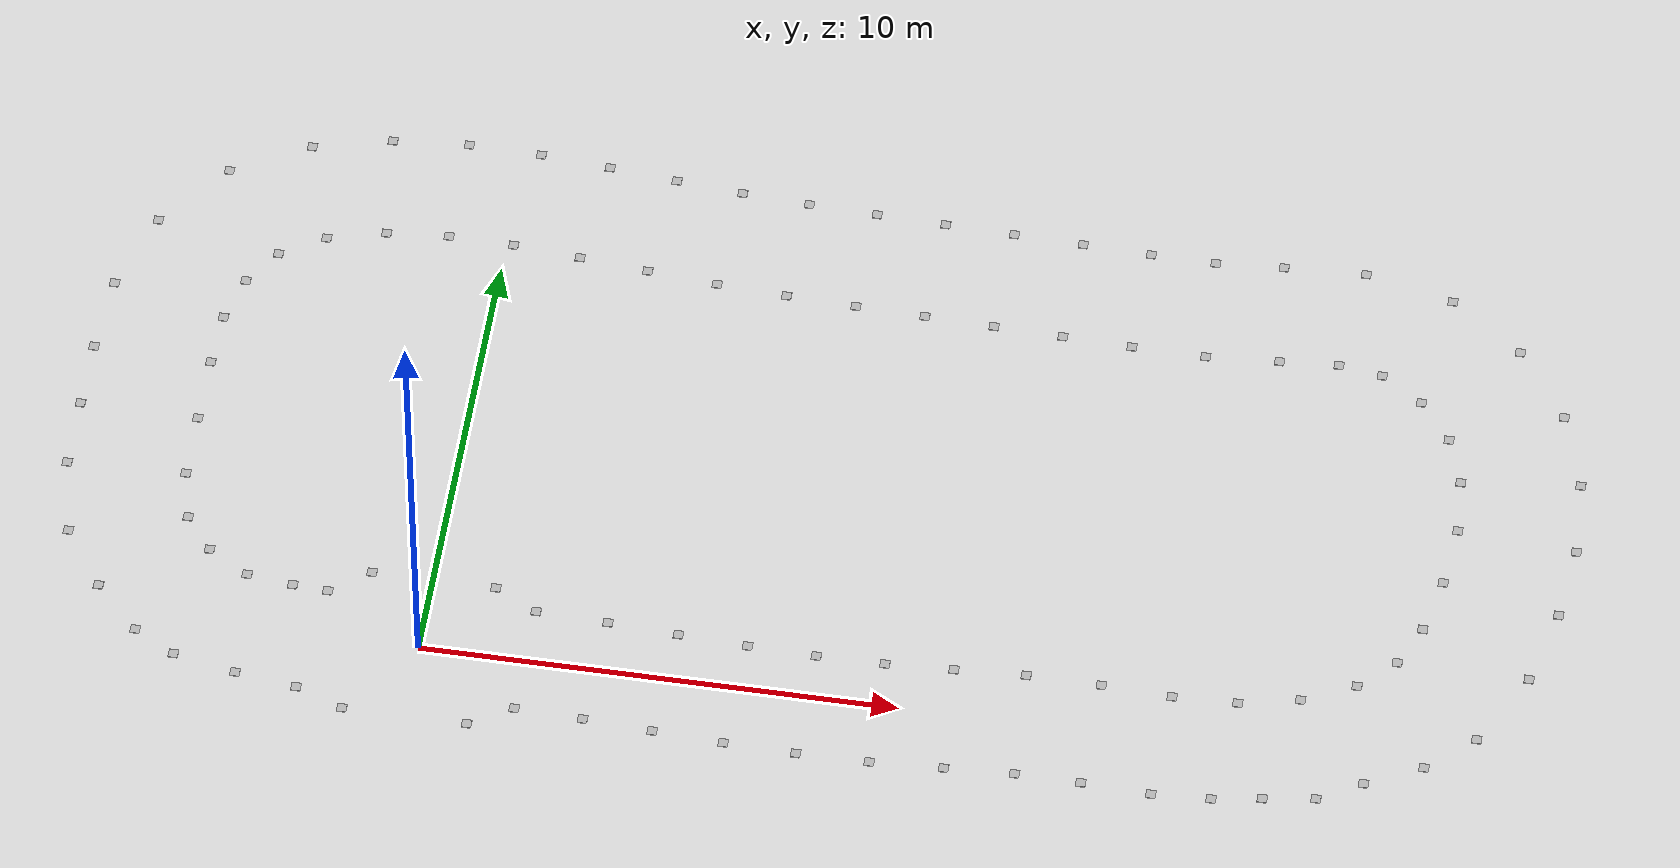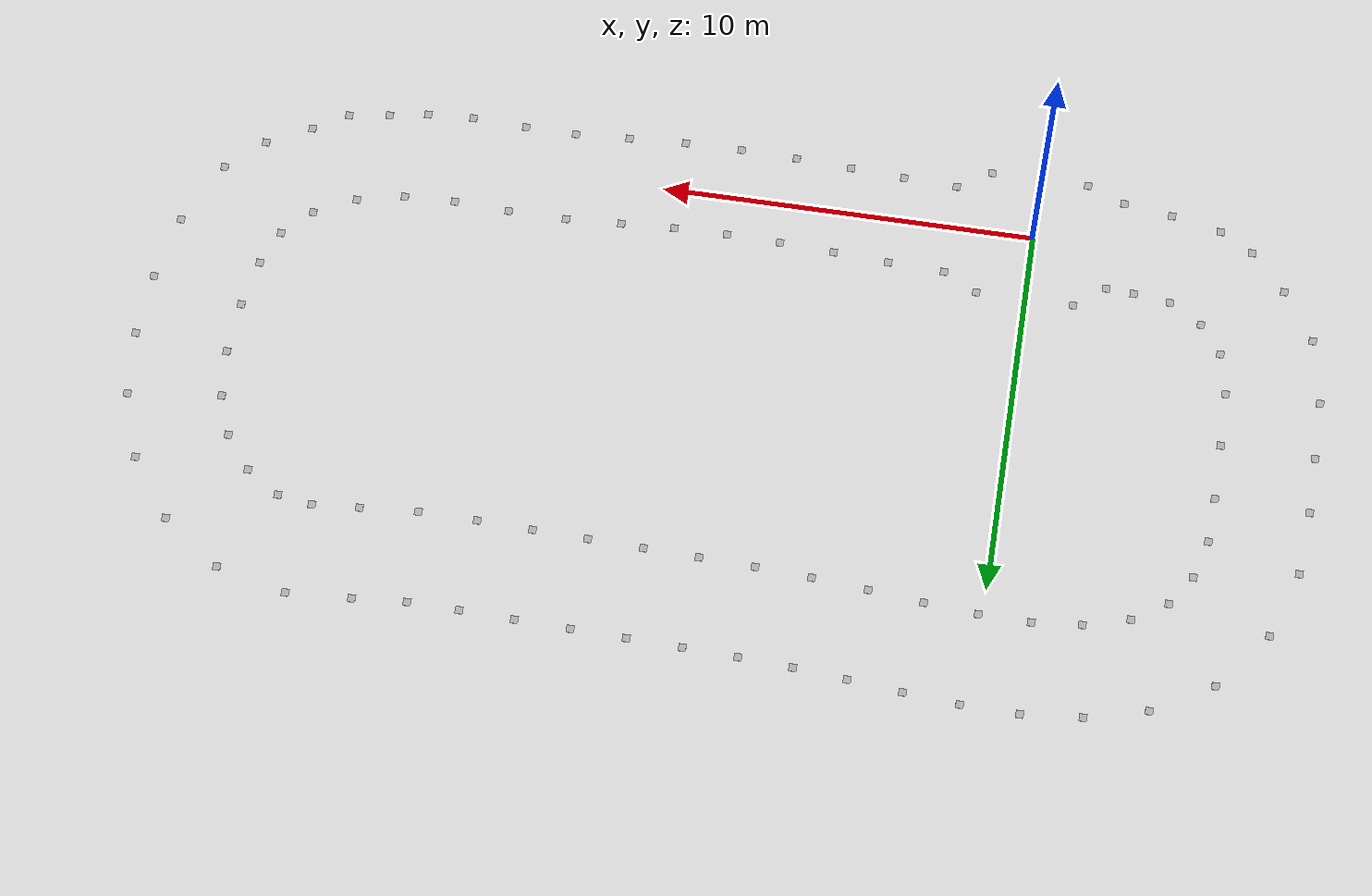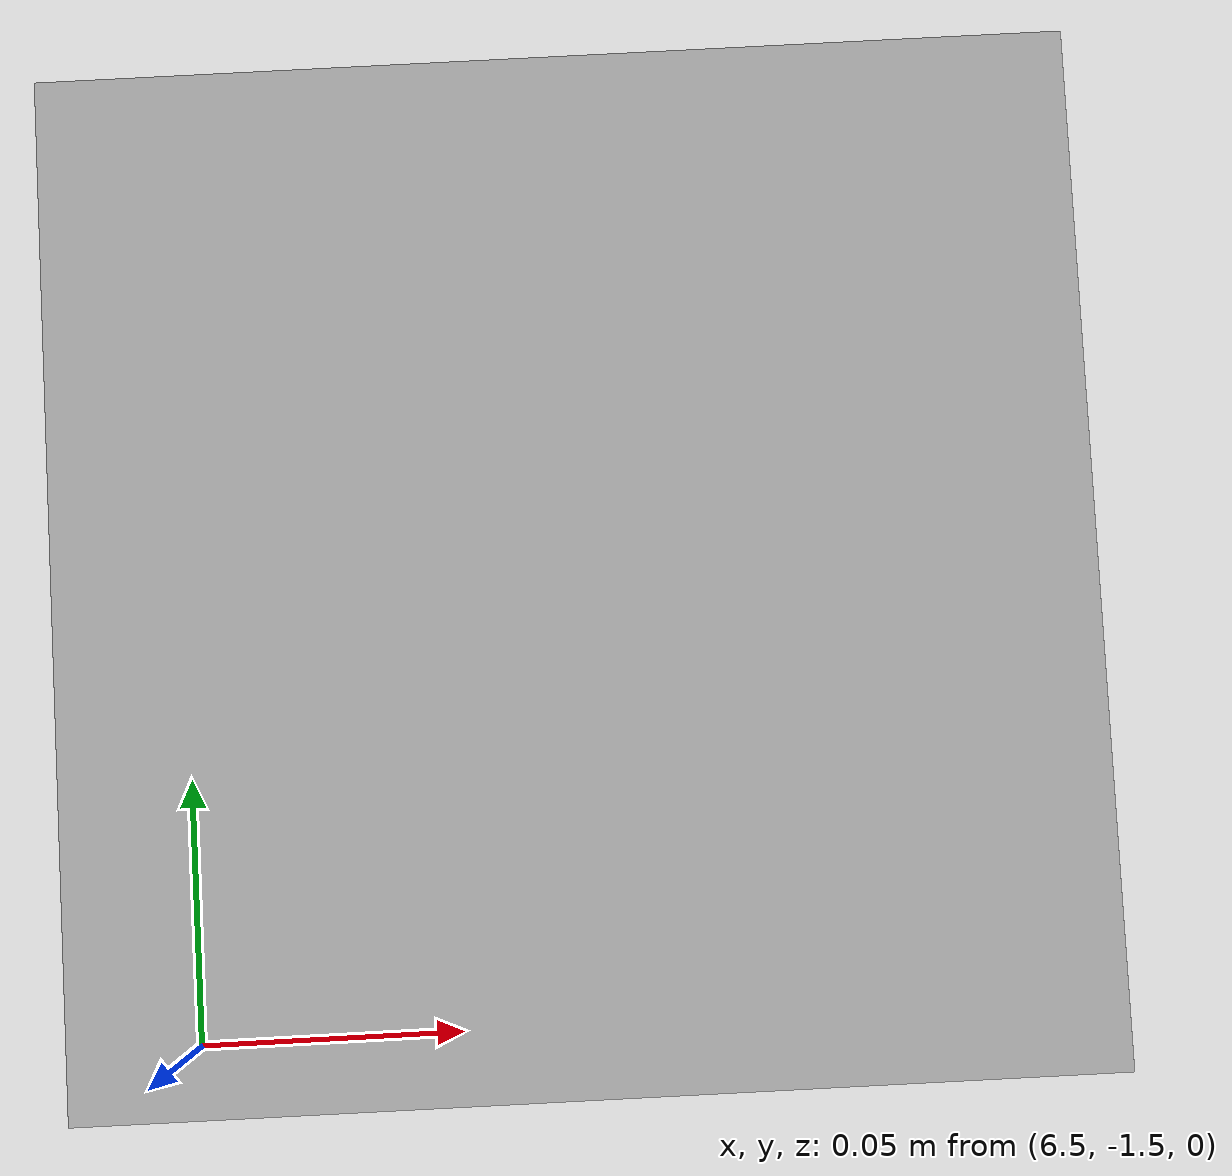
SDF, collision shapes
<?xml version='1.0' encoding='UTF-8'?>
<sdf version="1.4">
  <model name="some track">
    <include>
      <uri>model://cone_yellow</uri>
      <pose>2.1986505809997072 -1.215353877288275 0 0 0 0</pose>
      <name>cone_right</name>
    </include>
    <include>
      <uri>model://cone_yellow</uri>
      <pose>3.6305950468824033 -1.267574848423376 0 0 0 0</pose>
      <name>cone_right</name>
    </include>
    <include>
      <uri>model://cone_yellow</uri>
      <pose>5.089175369233953 -1.3439329501333463 0 0 0 0</pose>
      <name>cone_right</name>
    </include>
    <include>
      <uri>model://cone_yellow</uri>
      <pose>6.575269563747831 -1.4132624315316897 0 0 0 0</pose>
      <name>cone_right</name>
    </include>
    <include>
      <uri>model://cone_yellow</uri>
      <pose>8.08313833049434 -1.4472067524502321 0 0 0 0</pose>
      <name>cone_right</name>
    </include>
    <include>
      <uri>model://cone_yellow</uri>
      <pose>9.60432135808471 -1.428205179995867 0 0 0 0</pose>
      <name>cone_right</name>
    </include>
    <include>
      <uri>model://cone_yellow</uri>
      <pose>11.129960583117047 -1.3458912716398117 0 0 0 0</pose>
      <name>cone_right</name>
    </include>
    <include>
      <uri>model://cone_yellow</uri>
      <pose>12.583459732650418 -1.2632786151428472 0 0 0 0</pose>
      <name>cone_right</name>
    </include>
    <include>
      <uri>model://cone_yellow</uri>
      <pose>13.952161715503015 -1.2754882922120903 0 0 0 0</pose>
      <name>cone_right</name>
    </include>
    <include>
      <uri>model://cone_yellow</uri>
      <pose>15.406956849520517 -1.3371010412167934 0 0 0 0</pose>
      <name>cone_right</name>
    </include>
    <include>
      <uri>model://cone_yellow</uri>
      <pose>18.753958240577315 -0.9328146333485399 0 0 0 0</pose>
      <name>cone_right</name>
    </include>
    <include>
      <uri>model://cone_yellow</uri>
      <pose>21.81363473421703 1.052130595346501 0 0 0 0</pose>
      <name>cone_right</name>
    </include>
    <include>
      <uri>model://cone_yellow</uri>
      <pose>22.694633996466152 2.729890063304585 0 0 0 0</pose>
      <name>cone_right</name>
    </include>
    <include>
      <uri>model://cone_yellow</uri>
      <pose>23.10292639492274 4.44898180318318 0 0 0 0</pose>
      <name>cone_right</name>
    </include>
    <include>
      <uri>model://cone_yellow</uri>
      <pose>23.274554723864163 6.119650013108543 0 0 0 0</pose>
      <name>cone_right</name>
    </include>
    <include>
      <uri>model://cone_yellow</uri>
      <pose>23.168133843542535 7.842229736720678 0 0 0 0</pose>
      <name>cone_right</name>
    </include>
    <include>
      <uri>model://cone_yellow</uri>
      <pose>22.61739989388106 9.568487493817257 0 0 0 0</pose>
      <name>cone_right</name>
    </include>
    <include>
      <uri>model://cone_yellow</uri>
      <pose>21.50741723736139 11.127737665392873 0 0 0 0</pose>
      <name>cone_right</name>
    </include>
    <include>
      <uri>model://cone_yellow</uri>
      <pose>19.941681775831128 12.247868753026477 0 0 0 0</pose>
      <name>cone_right</name>
    </include>
    <include>
      <uri>model://cone_yellow</uri>
      <pose>18.046574675836876 12.690158210225187 0 0 0 0</pose>
      <name>cone_right</name>
    </include>
    <include>
      <uri>model://cone_yellow</uri>
      <pose>16.31048900097614 12.603140557383453 0 0 0 0</pose>
      <name>cone_right</name>
    </include>
    <include>
      <uri>model://cone_yellow</uri>
      <pose>14.866387035531348 12.497052250358728 0 0 0 0</pose>
      <name>cone_right</name>
    </include>
    <include>
      <uri>model://cone_yellow</uri>
      <pose>13.490858411705096 12.515929176945633 0 0 0 0</pose>
      <name>cone_right</name>
    </include>
    <include>
      <uri>model://cone_yellow</uri>
      <pose>12.029214759628953 12.562726086613313 0 0 0 0</pose>
      <name>cone_right</name>
    </include>
    <include>
      <uri>model://cone_yellow</uri>
      <pose>10.552549702023747 12.604837539616813 0 0 0 0</pose>
      <name>cone_right</name>
    </include>
    <include>
      <uri>model://cone_yellow</uri>
      <pose>9.075995564179292 12.644786896783096 0 0 0 0</pose>
      <name>cone_right</name>
    </include>
    <include>
      <uri>model://cone_yellow</uri>
      <pose>7.601939056786499 12.68570916570174 0 0 0 0</pose>
      <name>cone_right</name>
    </include>
    <include>
      <uri>model://cone_yellow</uri>
      <pose>6.138967076585573 12.735390297038458 0 0 0 0</pose>
      <name>cone_right</name>
    </include>
    <include>
      <uri>model://cone_yellow</uri>
      <pose>4.695712205796772 12.811687060557881 0 0 0 0</pose>
      <name>cone_right</name>
    </include>
    <include>
      <uri>model://cone_yellow</uri>
      <pose>3.262680029143601 12.92791547723077 0 0 0 0</pose>
      <name>cone_right</name>
    </include>
    <include>
      <uri>model://cone_yellow</uri>
      <pose>1.8004462301606345 13.062604211579583 0 0 0 0</pose>
      <name>cone_right</name>
    </include>
    <include>
      <uri>model://cone_yellow</uri>
      <pose>0.2987425647726314 13.176696332171888 0 0 0 0</pose>
      <name>cone_right</name>
    </include>
    <include>
      <uri>model://cone_yellow</uri>
      <pose>-1.263276420047683 13.208711185529278 0 0 0 0</pose>
      <name>cone_right</name>
    </include>
    <include>
      <uri>model://cone_yellow</uri>
      <pose>-2.8875576171361605 13.067542558421264 0 0 0 0</pose>
      <name>cone_right</name>
    </include>
    <include>
      <uri>model://cone_yellow</uri>
      <pose>-4.55547174049566 12.645674955778377 0 0 0 0</pose>
      <name>cone_right</name>
    </include>
    <include>
      <uri>model://cone_yellow</uri>
      <pose>-6.179244356542561 11.736739693785198 0 0 0 0</pose>
      <name>cone_right</name>
    </include>
    <include>
      <uri>model://cone_yellow</uri>
      <pose>-7.419970350350535 10.187045066542856 0 0 0 0</pose>
      <name>cone_right</name>
    </include>
    <include>
      <uri>model://cone_yellow</uri>
      <pose>-8.01530528154998 8.390387916552832 0 0 0 0</pose>
      <name>cone_right</name>
    </include>
    <include>
      <uri>model://cone_yellow</uri>
      <pose>-8.119661448099842 6.665528253512518 0 0 0 0</pose>
      <name>cone_right</name>
    </include>
    <include>
      <uri>model://cone_yellow</uri>
      <pose>-8.113013331248473 5.151829222498682 0 0 0 0</pose>
      <name>cone_right</name>
    </include>
    <include>
      <uri>model://cone_yellow</uri>
      <pose>-8.088691525529473 3.584237787224181 0 0 0 0</pose>
      <name>cone_right</name>
    </include>
    <include>
      <uri>model://cone_yellow</uri>
      <pose>-7.723921943669687 1.8483248021418444 0 0 0 0</pose>
      <name>cone_right</name>
    </include>
    <include>
      <uri>model://cone_yellow</uri>
      <pose>-4.975933159599759 -0.9292928901659907 0 0 0 0</pose>
      <name>cone_right</name>
    </include>
    <include>
      <uri>model://cone_yellow</uri>
      <pose>-2.3263469377389256 -1.3693378156195308 0 0 0 0</pose>
      <name>cone_right</name>
    </include>
    <include>
      <uri>model://cone_yellow</uri>
      <pose>-3.6341776450075898 -1.1972548278210269 0 0 0 0</pose>
      <name>cone_right</name>
    </include>
    <include>
      <uri>model://cone_yellow</uri>
      <pose>-6.83492121805984 0.5579916477237603 0 0 0 0</pose>
      <name>cone_right</name>
    </include>
    <include>
      <uri>model://cone_yellow</uri>
      <pose>-5.871256486388198 -0.44008968150759387 0 0 0 0</pose>
      <name>cone_right</name>
    </include>
    <include>
      <uri>model://cone_yellow</uri>
      <pose>19.6658589029104 -0.4056730839478959 0 0 0 0</pose>
      <name>cone_right</name>
    </include>
    <include>
      <uri>model://cone_yellow</uri>
      <pose>20.83602321994026 0.17940907456703314 0 0 0 0</pose>
      <name>cone_right</name>
    </include>
    <include>
      <uri>model://cone_yellow</uri>
      <pose>16.63719831765666 -1.266088022940437 0 0 0 0</pose>
      <name>cone_right</name>
    </include>
    <include>
      <uri>model://cone_yellow</uri>
      <pose>17.669696244447707 -1.094005035141926 0 0 0 0</pose>
      <name>cone_right</name>
    </include>
    <include>
      <uri>model://cone_blue</uri>
      <pose>2.2249513819951 1.2845077724569667 0 0 0 0</pose>
      <name>cone_left</name>
    </include>
    <include>
      <uri>model://cone_blue</uri>
      <pose>3.737876679594488 1.2301222211354264 0 0 0 0</pose>
      <name>cone_left</name>
    </include>
    <include>
      <uri>model://cone_blue</uri>
      <pose>5.22302914327658 1.152481111510784 0 0 0 0</pose>
      <name>cone_left</name>
    </include>
    <include>
      <uri>model://cone_blue</uri>
      <pose>6.681433133139199 1.0844824106277502 0 0 0 0</pose>
      <name>cone_left</name>
    </include>
    <include>
      <uri>model://cone_blue</uri>
      <pose>8.120133393558113 1.0525195056246208 0 0 0 0</pose>
      <name>cone_left</name>
    </include>
    <include>
      <uri>model://cone_blue</uri>
      <pose>9.547445052197304 1.0711477534308231 0 0 0 0</pose>
      <name>cone_left</name>
    </include>
    <include>
      <uri>model://cone_blue</uri>
      <pose>10.971463213333863 1.149079386258155 0 0 0 0</pose>
      <name>cone_left</name>
    </include>
    <include>
      <uri>model://cone_blue</uri>
      <pose>12.462427009988883 1.2337898821245254 0 0 0 0</pose>
      <name>cone_left</name>
    </include>
    <include>
      <uri>model://cone_blue</uri>
      <pose>14.02398366985477 1.22347981620248 0 0 0 0</pose>
      <name>cone_left</name>
    </include>
    <include>
      <uri>model://cone_blue</uri>
      <pose>15.500176308559597 1.1611603807437787 0 0 0 0</pose>
      <name>cone_left</name>
    </include>
    <include>
      <uri>model://cone_blue</uri>
      <pose>16.854258682005888 1.2091609599903115 0 0 0 0</pose>
      <name>cone_left</name>
    </include>
    <include>
      <uri>model://cone_blue</uri>
      <pose>18.11846012918301 1.4850650473664193 0 0 0 0</pose>
      <name>cone_left</name>
    </include>
    <include>
      <uri>model://cone_blue</uri>
      <pose>19.220928353121344 2.012108159168452 0 0 0 0</pose>
      <name>cone_left</name>
    </include>
    <include>
      <uri>model://cone_blue</uri>
      <pose>19.963709181322518 2.733729670259404 0 0 0 0</pose>
      <name>cone_left</name>
    </include>
    <include>
      <uri>model://cone_blue</uri>
      <pose>20.37415073764491 3.660135969251148 0 0 0 0</pose>
      <name>cone_left</name>
    </include>
    <include>
      <uri>model://cone_blue</uri>
      <pose>20.64612164446583 4.911702472845095 0 0 0 0</pose>
      <name>cone_left</name>
    </include>
    <include>
      <uri>model://cone_blue</uri>
      <pose>20.780298247423104 6.289015386582068 0 0 0 0</pose>
      <name>cone_left</name>
    </include>
    <include>
      <uri>model://cone_blue</uri>
      <pose>20.686084712391114 7.543177716913987 0 0 0 0</pose>
      <name>cone_left</name>
    </include>
    <include>
      <uri>model://cone_blue</uri>
      <pose>20.30946338284075 8.6075353300718 0 0 0 0</pose>
      <name>cone_left</name>
    </include>
    <include>
      <uri>model://cone_blue</uri>
      <pose>19.61869000290979 9.489839794998995 0 0 0 0</pose>
      <name>cone_left</name>
    </include>
    <include>
      <uri>model://cone_blue</uri>
      <pose>18.718981596799438 10.067271524697535 0 0 0 0</pose>
      <name>cone_left</name>
    </include>
    <include>
      <uri>model://cone_blue</uri>
      <pose>17.787528366822254 10.203615427607945 0 0 0 0</pose>
      <name>cone_left</name>
    </include>
    <include>
      <uri>model://cone_blue</uri>
      <pose>16.53881718648759 10.113589144035851 0 0 0 0</pose>
      <name>cone_left</name>
    </include>
    <include>
      <uri>model://cone_blue</uri>
      <pose>14.990736557225608 10.00014672622402 0 0 0 0</pose>
      <name>cone_left</name>
    </include>
    <include>
      <uri>model://cone_blue</uri>
      <pose>13.426056678865374 10.016769170979433 0 0 0 0</pose>
      <name>cone_left</name>
    </include>
    <include>
      <uri>model://cone_blue</uri>
      <pose>11.951845152946273 10.063923584621257 0 0 0 0</pose>
      <name>cone_left</name>
    </include>
    <include>
      <uri>model://cone_blue</uri>
      <pose>10.482873173682169 10.105808691964537 0 0 0 0</pose>
      <name>cone_left</name>
    </include>
    <include>
      <uri>model://cone_blue</uri>
      <pose>9.008621815876838 10.145694906071334 0 0 0 0</pose>
      <name>cone_left</name>
    </include>
    <include>
      <uri>model://cone_blue</uri>
      <pose>7.531416699818756 10.186704044224852 0 0 0 0</pose>
      <name>cone_left</name>
    </include>
    <include>
      <uri>model://cone_blue</uri>
      <pose>6.046634761414532 10.237095930160296 0 0 0 0</pose>
      <name>cone_left</name>
    </include>
    <include>
      <uri>model://cone_blue</uri>
      <pose>4.548001899778191 10.316054542438296 0 0 0 0</pose>
      <name>cone_left</name>
    </include>
    <include>
      <uri>model://cone_blue</uri>
      <pose>3.0458523954482937 10.437336071296059 0 0 0 0</pose>
      <name>cone_left</name>
    </include>
    <include>
      <uri>model://cone_blue</uri>
      <pose>1.5725452778946392 10.573013651676959 0 0 0 0</pose>
      <name>cone_left</name>
    </include>
    <include>
      <uri>model://cone_blue</uri>
      <pose>0.12889923299363343 10.682472356132406 0 0 0 0</pose>
      <name>cone_left</name>
    </include>
    <include>
      <uri>model://cone_blue</uri>
      <pose>-1.2612266421064182 10.70871202584734 0 0 0 0</pose>
      <name>cone_left</name>
    </include>
    <include>
      <uri>model://cone_blue</uri>
      <pose>-2.5806774423911247 10.58644913850567 0 0 0 0</pose>
      <name>cone_left</name>
    </include>
    <include>
      <uri>model://cone_blue</uri>
      <pose>-3.811163738838898 10.259044360426488 0 0 0 0</pose>
      <name>cone_left</name>
    </include>
    <include>
      <uri>model://cone_blue</uri>
      <pose>-4.74071940929694 9.69207689123022 0 0 0 0</pose>
      <name>cone_left</name>
    </include>
    <include>
      <uri>model://cone_blue</uri>
      <pose>-5.290690135884873 8.877019964384482 0 0 0 0</pose>
      <name>cone_left</name>
    </include>
    <include>
      <uri>model://cone_blue</uri>
      <pose>-5.576176566591268 7.842071300113141 0 0 0 0</pose>
      <name>cone_left</name>
    </include>
    <include>
      <uri>model://cone_blue</uri>
      <pose>-5.619816744677822 6.637663243681649 0 0 0 0</pose>
      <name>cone_left</name>
    </include>
    <include>
      <uri>model://cone_blue</uri>
      <pose>-5.613047170275248 5.138821763530858 0 0 0 0</pose>
      <name>cone_left</name>
    </include>
    <include>
      <uri>model://cone_blue</uri>
      <pose>-5.590578173960053 3.681344340610681 0 0 0 0</pose>
      <name>cone_left</name>
    </include>
    <include>
      <uri>model://cone_blue</uri>
      <pose>-5.331870049009851 2.5750212540764066 0 0 0 0</pose>
      <name>cone_left</name>
    </include>
    <include>
      <uri>model://cone_blue</uri>
      <pose>-4.733952417702591 1.8124563666892064 0 0 0 0</pose>
      <name>cone_left</name>
    </include>
    <include>
      <uri>model://cone_blue</uri>
      <pose>-3.8462812905491126 1.3009283219002878 0 0 0 0</pose>
      <name>cone_left</name>
    </include>
    <include>
      <uri>model://cone_blue</uri>
      <pose>-2.865049204760295 1.184406087212642 0 0 0 0</pose>
      <name>cone_left</name>
    </include>
    <include>
      <uri>model://cone_blue</uri>
      <pose>-2.1198473523807166 1.1430738062386823 0 0 0 0</pose>
      <name>cone_left</name>
    </include>
    <include>
      <uri>model://cone_orange_big</uri>
      <pose>-1.3 1.75 0 0 0 0</pose>
      <name>cone_orange_big</name>
    </include>
    <include>
      <uri>model://cone_orange_big</uri>
      <pose>-1.3 -1.75 0 0 0 0</pose>
      <name>cone_orange_big</name>
    </include>
    <include>
      <uri>model://cone_orange_big</uri>
      <pose>1.3 1.75 0 0 0 0</pose>
      <name>cone_orange_big</name>
    </include>
    <include>
      <uri>model://cone_orange_big</uri>
      <pose>1.3 -1.75 0 0 0 0</pose>
      <name>cone_orange_big</name>
    </include>
  </model>
</sdf>

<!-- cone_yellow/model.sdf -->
<sdf version='1.4'>
  <model name="cone_yellow">
    <link name="link">
    <collision name="collision"><geometry><box><size> 0.2 0.2 0.01</size>
             </box></geometry></collision>
      <visual name="visual">
        <geometry>
          <mesh>
            <uri>model://YellowCone.dae</uri>
            <scale>1 1 1</scale>
          </mesh>
        </geometry>
        <material>
            <script>
              <uri>model://cone_yellow/materials/scripts</uri>
              <uri>model://cone_yellow/materials/textures</uri>
              <name>cone_yellow/Image</name>
            </script>
        </material>
      </visual>
    </link>
  </model>
</sdf>

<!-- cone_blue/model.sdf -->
<sdf version='1.4'>
  <model name="cone_blue">
    <link name="link">
    <collision name="collision"><geometry><box><size> 0.2 0.2 0.01</size>
             </box></geometry></collision>
      <visual name="visual">
        <geometry>
          <mesh>
            <uri>model://BlueCone.dae</uri>
            <scale>1 1 1</scale>
          </mesh>
        </geometry>
        <material>
            <script>
              <uri>model://cone_blue/materials/scripts</uri>
              <uri>model://cone_blue/materials/textures</uri>
              <name>cone_blue/Image</name>
            </script>
        </material>
      </visual>
    </link>
  </model>
</sdf>

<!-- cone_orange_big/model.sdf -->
<sdf version='1.4'>
  <model name="cone_orange_big">
    <link name="link">
    <collision name="collision"><geometry><box><size> 0.2 0.2 0.01</size>
             </box></geometry></collision>
      <visual name="visual">
        <geometry>
          <mesh>
            <uri>model://BigOrangeCone.dae</uri>
            <scale>1 1 1</scale>
          </mesh>
        </geometry>
        <material>
            <script>
              <uri>model://cone_orange_big/materials/scripts</uri>
              <uri>model://cone_orange_big/materials/textures</uri>
              <name>cone_orange_big/Image</name>
            </script>
        </material>
      </visual>
    </link>
  </model>
</sdf>
